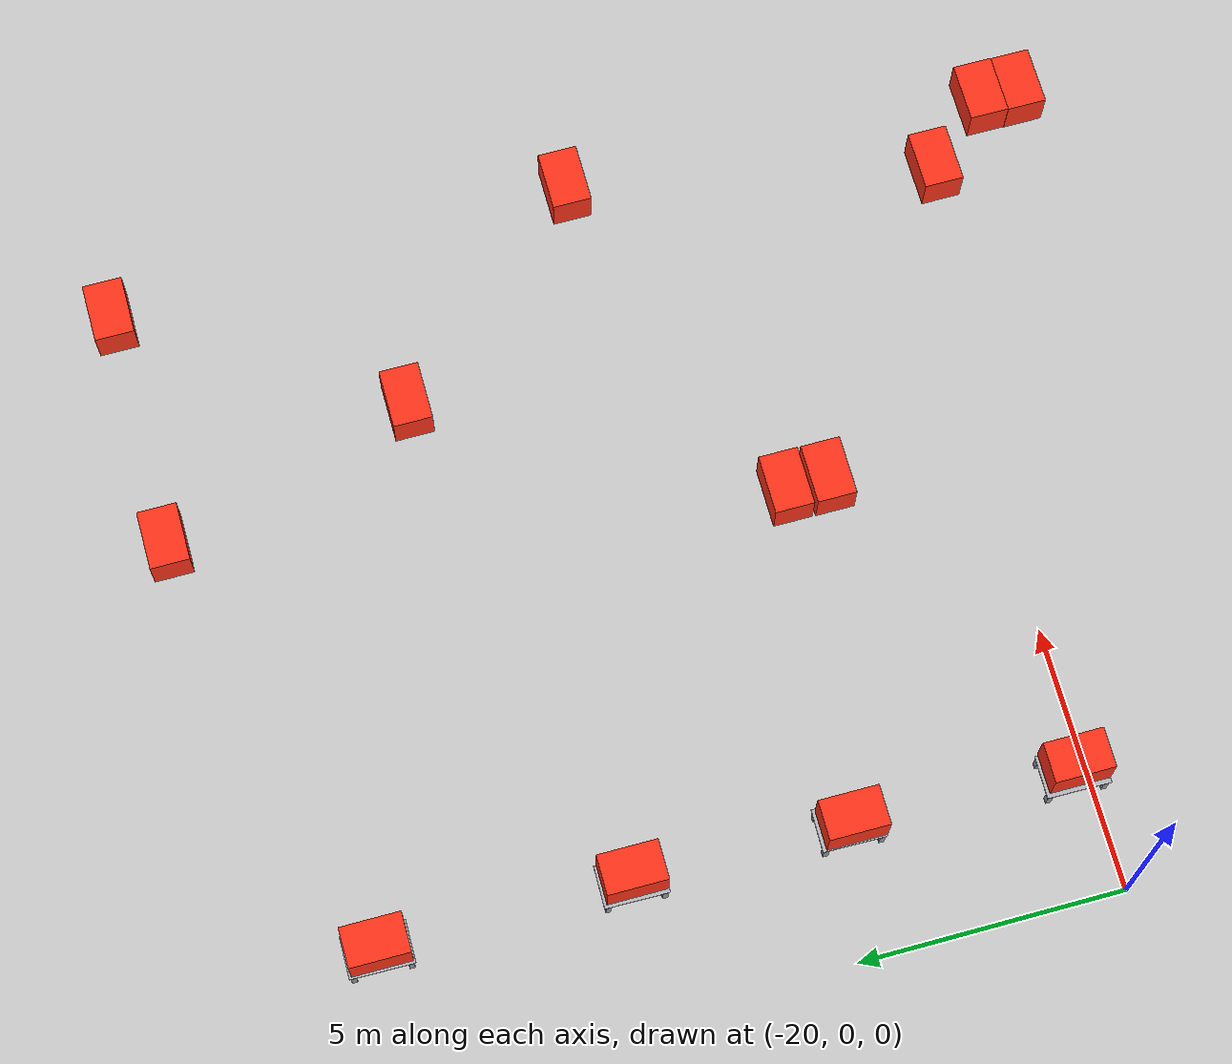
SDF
<sdf version="1.7">
 <world name="default">
  <model name="ground_plane">
   <static>1</static>
   <link name="link">
    <collision name="collision">
     <geometry><plane><normal>0 0 1</normal><size>100 100</size></plane></geometry>
     <surface>
      <contact><collide_bitmask>65535</collide_bitmask></contact>
      <friction><ode><mu>100</mu><mu2>50</mu2></ode></friction>
     </surface>
    </collision>
    <visual name="visual">
     <cast_shadows>0</cast_shadows>
     <geometry><plane><normal>0 0 1</normal><size>100 100</size></plane></geometry>
     <material>
      <script><uri>file://media/materials/scripts/gazebo.material</uri><name>Gazebo/Grey</name></script>
     </material>
    </visual>
   </link>
  </model>
  <model name="stand_1">
   <static>0</static>
   <link name="base_link">
    <collision name="top_plate_col">
     <pose>0 0 0.46 0 -0 0</pose>
     <geometry><box><size>1.2 0.8 0.02</size></box></geometry>
    </collision>
    <visual name="top_plate_vis">
     <pose>0 0 0.46 0 -0 0</pose>
     <geometry><box><size>1.2 0.8 0.02</size></box></geometry>
     <material>
      <ambient>0.72 0.72 0.75 1</ambient>
      <diffuse>0.72 0.72 0.75 1</diffuse>
      <specular>0.5 0.5 0.5 1</specular>
     </material>
    </visual>
    <collision name="leg_fl_col">
     <pose>0.52 -0.33 0.225 0 -0 0</pose>
     <geometry><box><size>0.1 0.1 0.45</size></box></geometry>
    </collision>
    <visual name="leg_fl_vis">
     <pose>0.52 -0.33 0.225 0 -0 0</pose>
     <geometry><box><size>0.1 0.1 0.45</size></box></geometry>
     <material><ambient>0.6 0.6 0.63 1</ambient><diffuse>0.6 0.6 0.63 1</diffuse></material>
    </visual>
    <collision name="leg_fr_col">
     <pose>0.52 0.33 0.225 0 -0 0</pose>
     <geometry><box><size>0.1 0.1 0.45</size></box></geometry>
    </collision>
    <visual name="leg_fr_vis">
     <pose>0.52 0.33 0.225 0 -0 0</pose>
     <geometry><box><size>0.1 0.1 0.45</size></box></geometry>
     <material><ambient>0.6 0.6 0.63 1</ambient><diffuse>0.6 0.6 0.63 1</diffuse></material>
    </visual>
    <collision name="leg_rl_col">
     <pose>-0.52 -0.33 0.225 0 -0 0</pose>
     <geometry><box><size>0.1 0.1 0.45</size></box></geometry>
    </collision>
    <visual name="leg_rl_vis">
     <pose>-0.52 -0.33 0.225 0 -0 0</pose>
     <geometry><box><size>0.1 0.1 0.45</size></box></geometry>
     <material><ambient>0.6 0.6 0.63 1</ambient><diffuse>0.6 0.6 0.63 1</diffuse></material>
    </visual>
    <collision name="leg_rr_col">
     <pose>-0.52 0.33 0.225 0 -0 0</pose>
     <geometry><box><size>0.1 0.1 0.45</size></box></geometry>
    </collision>
    <visual name="leg_rr_vis">
     <pose>-0.52 0.33 0.225 0 -0 0</pose>
     <geometry><box><size>0.1 0.1 0.45</size></box></geometry>
     <material><ambient>0.6 0.6 0.63 1</ambient><diffuse>0.6 0.6 0.63 1</diffuse></material>
    </visual>
    <inertial>
     <mass>25</mass>
     <inertia><ixx>1.4</ixx><iyy>2.1</iyy><izz>3.2</izz><ixy>0</ixy><ixz>0</ixz><iyz>0</iyz></inertia>
    </inertial>
   </link>
   <pose>-17.628 4.46342 0 -2e-06 -1e-06 -1.58732</pose>
  </model>
  <model name="stand_1_clone">
   <static>0</static>
   <link name="base_link">
    <collision name="top_plate_col">
     <pose>0 0 0.46 0 -0 0</pose>
     <geometry><box><size>1.2 0.8 0.02</size></box></geometry>
    </collision>
    <visual name="top_plate_vis">
     <pose>0 0 0.46 0 -0 0</pose>
     <geometry><box><size>1.2 0.8 0.02</size></box></geometry>
     <material>
      <ambient>0.72 0.72 0.75 1</ambient>
      <diffuse>0.72 0.72 0.75 1</diffuse>
      <specular>0.5 0.5 0.5 1</specular>
     </material>
    </visual>
    <collision name="leg_fl_col">
     <pose>0.52 -0.33 0.225 0 -0 0</pose>
     <geometry><box><size>0.1 0.1 0.45</size></box></geometry>
    </collision>
    <visual name="leg_fl_vis">
     <pose>0.52 -0.33 0.225 0 -0 0</pose>
     <geometry><box><size>0.1 0.1 0.45</size></box></geometry>
     <material><ambient>0.6 0.6 0.63 1</ambient><diffuse>0.6 0.6 0.63 1</diffuse></material>
    </visual>
    <collision name="leg_fr_col">
     <pose>0.52 0.33 0.225 0 -0 0</pose>
     <geometry><box><size>0.1 0.1 0.45</size></box></geometry>
    </collision>
    <visual name="leg_fr_vis">
     <pose>0.52 0.33 0.225 0 -0 0</pose>
     <geometry><box><size>0.1 0.1 0.45</size></box></geometry>
     <material><ambient>0.6 0.6 0.63 1</ambient><diffuse>0.6 0.6 0.63 1</diffuse></material>
    </visual>
    <collision name="leg_rl_col">
     <pose>-0.52 -0.33 0.225 0 -0 0</pose>
     <geometry><box><size>0.1 0.1 0.45</size></box></geometry>
    </collision>
    <visual name="leg_rl_vis">
     <pose>-0.52 -0.33 0.225 0 -0 0</pose>
     <geometry><box><size>0.1 0.1 0.45</size></box></geometry>
     <material><ambient>0.6 0.6 0.63 1</ambient><diffuse>0.6 0.6 0.63 1</diffuse></material>
    </visual>
    <collision name="leg_rr_col">
     <pose>-0.52 0.33 0.225 0 -0 0</pose>
     <geometry><box><size>0.1 0.1 0.45</size></box></geometry>
    </collision>
    <visual name="leg_rr_vis">
     <pose>-0.52 0.33 0.225 0 -0 0</pose>
     <geometry><box><size>0.1 0.1 0.45</size></box></geometry>
     <material><ambient>0.6 0.6 0.63 1</ambient><diffuse>0.6 0.6 0.63 1</diffuse></material>
    </visual>
    <inertial>
     <mass>25</mass>
     <inertia><ixx>1.4</ixx><iyy>2.1</iyy><izz>3.2</izz><ixy>0</ixy><ixz>0</ixz><iyz>0</iyz></inertia>
    </inertial>
   </link>
   <pose>-17.5795 8.4682 -8e-06 -2.7e-05 -0 -1.58637</pose>
  </model>
  <model name="stand_1_clone_0">
   <static>0</static>
   <link name="base_link">
    <collision name="top_plate_col">
     <pose>0 0 0.46 0 -0 0</pose>
     <geometry><box><size>1.2 0.8 0.02</size></box></geometry>
    </collision>
    <visual name="top_plate_vis">
     <pose>0 0 0.46 0 -0 0</pose>
     <geometry><box><size>1.2 0.8 0.02</size></box></geometry>
     <material>
      <ambient>0.72 0.72 0.75 1</ambient>
      <diffuse>0.72 0.72 0.75 1</diffuse>
      <specular>0.5 0.5 0.5 1</specular>
     </material>
    </visual>
    <collision name="leg_fl_col">
     <pose>0.52 -0.33 0.225 0 -0 0</pose>
     <geometry><box><size>0.1 0.1 0.45</size></box></geometry>
    </collision>
    <visual name="leg_fl_vis">
     <pose>0.52 -0.33 0.225 0 -0 0</pose>
     <geometry><box><size>0.1 0.1 0.45</size></box></geometry>
     <material><ambient>0.6 0.6 0.63 1</ambient><diffuse>0.6 0.6 0.63 1</diffuse></material>
    </visual>
    <collision name="leg_fr_col">
     <pose>0.52 0.33 0.225 0 -0 0</pose>
     <geometry><box><size>0.1 0.1 0.45</size></box></geometry>
    </collision>
    <visual name="leg_fr_vis">
     <pose>0.52 0.33 0.225 0 -0 0</pose>
     <geometry><box><size>0.1 0.1 0.45</size></box></geometry>
     <material><ambient>0.6 0.6 0.63 1</ambient><diffuse>0.6 0.6 0.63 1</diffuse></material>
    </visual>
    <collision name="leg_rl_col">
     <pose>-0.52 -0.33 0.225 0 -0 0</pose>
     <geometry><box><size>0.1 0.1 0.45</size></box></geometry>
    </collision>
    <visual name="leg_rl_vis">
     <pose>-0.52 -0.33 0.225 0 -0 0</pose>
     <geometry><box><size>0.1 0.1 0.45</size></box></geometry>
     <material><ambient>0.6 0.6 0.63 1</ambient><diffuse>0.6 0.6 0.63 1</diffuse></material>
    </visual>
    <collision name="leg_rr_col">
     <pose>-0.52 0.33 0.225 0 -0 0</pose>
     <geometry><box><size>0.1 0.1 0.45</size></box></geometry>
    </collision>
    <visual name="leg_rr_vis">
     <pose>-0.52 0.33 0.225 0 -0 0</pose>
     <geometry><box><size>0.1 0.1 0.45</size></box></geometry>
     <material><ambient>0.6 0.6 0.63 1</ambient><diffuse>0.6 0.6 0.63 1</diffuse></material>
    </visual>
    <inertial>
     <mass>25</mass>
     <inertia><ixx>1.4</ixx><iyy>2.1</iyy><izz>3.2</izz><ixy>0</ixy><ixz>0</ixz><iyz>0</iyz></inertia>
    </inertial>
   </link>
   <pose>-17.6066 13.1095 -5e-06 -2e-06 -1.1e-05 -1.58637</pose>
  </model>
  <model name="stand_1_clone_1">
   <static>0</static>
   <link name="base_link">
    <collision name="top_plate_col">
     <pose>0 0 0.46 0 -0 0</pose>
     <geometry><box><size>1.2 0.8 0.02</size></box></geometry>
    </collision>
    <visual name="top_plate_vis">
     <pose>0 0 0.46 0 -0 0</pose>
     <geometry><box><size>1.2 0.8 0.02</size></box></geometry>
     <material>
      <ambient>0.72 0.72 0.75 1</ambient>
      <diffuse>0.72 0.72 0.75 1</diffuse>
      <specular>0.5 0.5 0.5 1</specular>
     </material>
    </visual>
    <collision name="leg_fl_col">
     <pose>0.52 -0.33 0.225 0 -0 0</pose>
     <geometry><box><size>0.1 0.1 0.45</size></box></geometry>
    </collision>
    <visual name="leg_fl_vis">
     <pose>0.52 -0.33 0.225 0 -0 0</pose>
     <geometry><box><size>0.1 0.1 0.45</size></box></geometry>
     <material><ambient>0.6 0.6 0.63 1</ambient><diffuse>0.6 0.6 0.63 1</diffuse></material>
    </visual>
    <collision name="leg_fr_col">
     <pose>0.52 0.33 0.225 0 -0 0</pose>
     <geometry><box><size>0.1 0.1 0.45</size></box></geometry>
    </collision>
    <visual name="leg_fr_vis">
     <pose>0.52 0.33 0.225 0 -0 0</pose>
     <geometry><box><size>0.1 0.1 0.45</size></box></geometry>
     <material><ambient>0.6 0.6 0.63 1</ambient><diffuse>0.6 0.6 0.63 1</diffuse></material>
    </visual>
    <collision name="leg_rl_col">
     <pose>-0.52 -0.33 0.225 0 -0 0</pose>
     <geometry><box><size>0.1 0.1 0.45</size></box></geometry>
    </collision>
    <visual name="leg_rl_vis">
     <pose>-0.52 -0.33 0.225 0 -0 0</pose>
     <geometry><box><size>0.1 0.1 0.45</size></box></geometry>
     <material><ambient>0.6 0.6 0.63 1</ambient><diffuse>0.6 0.6 0.63 1</diffuse></material>
    </visual>
    <collision name="leg_rr_col">
     <pose>-0.52 0.33 0.225 0 -0 0</pose>
     <geometry><box><size>0.1 0.1 0.45</size></box></geometry>
    </collision>
    <visual name="leg_rr_vis">
     <pose>-0.52 0.33 0.225 0 -0 0</pose>
     <geometry><box><size>0.1 0.1 0.45</size></box></geometry>
     <material><ambient>0.6 0.6 0.63 1</ambient><diffuse>0.6 0.6 0.63 1</diffuse></material>
    </visual>
    <inertial>
     <mass>25</mass>
     <inertia><ixx>1.4</ixx><iyy>2.1</iyy><izz>3.2</izz><ixy>0</ixy><ixz>0</ixz><iyz>0</iyz></inertia>
    </inertial>
   </link>
   <pose>-17.7499 0.319467 -2.6e-05 -3.1e-05 1e-06 -1.58628</pose>
  </model>
  <model name="payload_box_clone_1">
   <link name="link">
    <inertial>
     <mass>15</mass>
     <inertia><ixx>2.32332</ixx><ixy>0</ixy><ixz>0</ixz><iyy>1.43272</iyy><iyz>0</iyz><izz>2.2858</izz></inertia>
    </inertial>
    <visual name="visual">
     <geometry><box><size>0.747047 1.12719 0.766877</size></box></geometry>
     <material>
      <script><name>Gazebo/Grey</name><uri>file://media/materials/scripts/gazebo.material</uri></script>
      <shader type="pixel"><normal_map>__default__</normal_map></shader>
      <ambient>1 0.2 0.1 0</ambient>
      <diffuse>0.7 0.7 0.7 1</diffuse>
      <specular>0.01 0.01 0.01 1</specular>
      <emissive>0 0 0 1</emissive>
     </material>
    </visual>
    <collision name="collision">
     <geometry><box><size>0.747047 1.12719 0.766877</size></box></geometry>
     <surface>
      <friction>
       <ode><mu>1</mu><mu2>1</mu2><fdir1>0 0 0</fdir1><slip1>0</slip1><slip2>0</slip2></ode>
       <torsional>
        <coefficient>1</coefficient>
        <patch_radius>0</patch_radius>
        <surface_radius>0</surface_radius>
        <use_patch_radius>1</use_patch_radius>
        <ode><slip>0</slip></ode>
       </torsional>
      </friction>
      <bounce><restitution_coefficient>0</restitution_coefficient><threshold>1e+06</threshold></bounce>
      <contact>
       <collide_without_contact>0</collide_without_contact>
       <collide_without_contact_bitmask>1</collide_without_contact_bitmask>
       <collide_bitmask>1</collide_bitmask>
       <ode>
        <soft_cfm>0</soft_cfm>
        <soft_erp>0.2</soft_erp>
        <kp>1e+13</kp>
        <kd>1</kd>
        <max_vel>0.01</max_vel>
        <min_depth>0</min_depth>
       </ode>
       <bullet>
        <split_impulse>1</split_impulse>
        <split_impulse_penetration_threshold>-0.01</split_impulse_penetration_threshold>
        <soft_cfm>0</soft_cfm>
        <soft_erp>0.2</soft_erp>
        <kp>1e+13</kp>
        <kd>1</kd>
       </bullet>
      </contact>
     </surface>
    </collision>
   </link>
   <static>0</static>
   <pose>-17.721 0.322757 0.997376 1e-06 -2.2e-05 -0.001675</pose>
  </model>
  <model name="payload_box_clone_2">
   <link name="link">
    <inertial>
     <mass>15</mass>
     <inertia><ixx>2.32332</ixx><ixy>0</ixy><ixz>0</ixz><iyy>1.43272</iyy><iyz>0</iyz><izz>2.2858</izz></inertia>
    </inertial>
    <visual name="visual">
     <geometry><box><size>0.747047 1.12719 0.766877</size></box></geometry>
     <material>
      <script><name>Gazebo/Grey</name><uri>file://media/materials/scripts/gazebo.material</uri></script>
      <shader type="pixel"><normal_map>__default__</normal_map></shader>
      <ambient>1 0.2 0.1 0</ambient>
      <diffuse>0.7 0.7 0.7 1</diffuse>
      <specular>0.01 0.01 0.01 1</specular>
      <emissive>0 0 0 1</emissive>
     </material>
    </visual>
    <collision name="collision">
     <geometry><box><size>0.747047 1.12719 0.766877</size></box></geometry>
     <surface>
      <friction>
       <ode><mu>1</mu><mu2>1</mu2><fdir1>0 0 0</fdir1><slip1>0</slip1><slip2>0</slip2></ode>
       <torsional>
        <coefficient>1</coefficient>
        <patch_radius>0</patch_radius>
        <surface_radius>0</surface_radius>
        <use_patch_radius>1</use_patch_radius>
        <ode><slip>0</slip></ode>
       </torsional>
      </friction>
      <bounce><restitution_coefficient>0</restitution_coefficient><threshold>1e+06</threshold></bounce>
      <contact>
       <collide_without_contact>0</collide_without_contact>
       <collide_without_contact_bitmask>1</collide_without_contact_bitmask>
       <collide_bitmask>1</collide_bitmask>
       <ode>
        <soft_cfm>0</soft_cfm>
        <soft_erp>0.2</soft_erp>
        <kp>1e+13</kp>
        <kd>1</kd>
        <max_vel>0.01</max_vel>
        <min_depth>0</min_depth>
       </ode>
       <bullet>
        <split_impulse>1</split_impulse>
        <split_impulse_penetration_threshold>-0.01</split_impulse_penetration_threshold>
        <soft_cfm>0</soft_cfm>
        <soft_erp>0.2</soft_erp>
        <kp>1e+13</kp>
        <kd>1</kd>
       </bullet>
      </contact>
     </surface>
    </collision>
   </link>
   <static>0</static>
   <pose>-17.6607 4.45201 0.997415 -8e-06 -2.8e-05 -0.004479</pose>
  </model>
  <model name="payload_box_clone_3">
   <link name="link">
    <inertial>
     <mass>15</mass>
     <inertia><ixx>2.32332</ixx><ixy>0</ixy><ixz>0</ixz><iyy>1.43272</iyy><iyz>0</iyz><izz>2.2858</izz></inertia>
    </inertial>
    <visual name="visual">
     <geometry><box><size>0.747047 1.12719 0.766877</size></box></geometry>
     <material>
      <script><name>Gazebo/Grey</name><uri>file://media/materials/scripts/gazebo.material</uri></script>
      <shader type="pixel"><normal_map>__default__</normal_map></shader>
      <ambient>1 0.2 0.1 0</ambient>
      <diffuse>0.7 0.7 0.7 1</diffuse>
      <specular>0.01 0.01 0.01 1</specular>
      <emissive>0 0 0 1</emissive>
     </material>
    </visual>
    <collision name="collision">
     <geometry><box><size>0.747047 1.12719 0.766877</size></box></geometry>
     <surface>
      <friction>
       <ode><mu>1</mu><mu2>1</mu2><fdir1>0 0 0</fdir1><slip1>0</slip1><slip2>0</slip2></ode>
       <torsional>
        <coefficient>1</coefficient>
        <patch_radius>0</patch_radius>
        <surface_radius>0</surface_radius>
        <use_patch_radius>1</use_patch_radius>
        <ode><slip>0</slip></ode>
       </torsional>
      </friction>
      <bounce><restitution_coefficient>0</restitution_coefficient><threshold>1e+06</threshold></bounce>
      <contact>
       <collide_without_contact>0</collide_without_contact>
       <collide_without_contact_bitmask>1</collide_without_contact_bitmask>
       <collide_bitmask>1</collide_bitmask>
       <ode>
        <soft_cfm>0</soft_cfm>
        <soft_erp>0.2</soft_erp>
        <kp>1e+13</kp>
        <kd>1</kd>
        <max_vel>0.01</max_vel>
        <min_depth>0</min_depth>
       </ode>
       <bullet>
        <split_impulse>1</split_impulse>
        <split_impulse_penetration_threshold>-0.01</split_impulse_penetration_threshold>
        <soft_cfm>0</soft_cfm>
        <soft_erp>0.2</soft_erp>
        <kp>1e+13</kp>
        <kd>1</kd>
       </bullet>
      </contact>
     </surface>
    </collision>
   </link>
   <static>0</static>
   <pose>-17.5692 8.46073 0.997417 3.8e-05 -6.3e-05 -0.003106</pose>
  </model>
  <model name="payload_box_clone_4">
   <link name="link">
    <inertial>
     <mass>15</mass>
     <inertia><ixx>2.32332</ixx><ixy>0</ixy><ixz>0</ixz><iyy>1.43272</iyy><iyz>0</iyz><izz>2.2858</izz></inertia>
    </inertial>
    <visual name="visual">
     <geometry><box><size>0.747047 1.12719 0.766877</size></box></geometry>
     <material>
      <script><name>Gazebo/Grey</name><uri>file://media/materials/scripts/gazebo.material</uri></script>
      <shader type="pixel"><normal_map>__default__</normal_map></shader>
      <ambient>1 0.2 0.1 0</ambient>
      <diffuse>0.7 0.7 0.7 1</diffuse>
      <specular>0.01 0.01 0.01 1</specular>
      <emissive>0 0 0 1</emissive>
     </material>
    </visual>
    <collision name="collision">
     <geometry><box><size>0.747047 1.12719 0.766877</size></box></geometry>
     <surface>
      <friction>
       <ode><mu>1</mu><mu2>1</mu2><fdir1>0 0 0</fdir1><slip1>0</slip1><slip2>0</slip2></ode>
       <torsional>
        <coefficient>1</coefficient>
        <patch_radius>0</patch_radius>
        <surface_radius>0</surface_radius>
        <use_patch_radius>1</use_patch_radius>
        <ode><slip>0</slip></ode>
       </torsional>
      </friction>
      <bounce><restitution_coefficient>0</restitution_coefficient><threshold>1e+06</threshold></bounce>
      <contact>
       <collide_without_contact>0</collide_without_contact>
       <collide_without_contact_bitmask>1</collide_without_contact_bitmask>
       <collide_bitmask>1</collide_bitmask>
       <ode>
        <soft_cfm>0</soft_cfm>
        <soft_erp>0.2</soft_erp>
        <kp>1e+13</kp>
        <kd>1</kd>
        <max_vel>0.01</max_vel>
        <min_depth>0</min_depth>
       </ode>
       <bullet>
        <split_impulse>1</split_impulse>
        <split_impulse_penetration_threshold>-0.01</split_impulse_penetration_threshold>
        <soft_cfm>0</soft_cfm>
        <soft_erp>0.2</soft_erp>
        <kp>1e+13</kp>
        <kd>1</kd>
       </bullet>
      </contact>
     </surface>
    </collision>
   </link>
   <static>0</static>
   <pose>-17.619 13.1008 0.997426 -3e-06 -3.3e-05 -0.004241</pose>
  </model>
  <model name="payload_box_clone_5_clone_8">
   <link name="link">
    <inertial>
     <mass>15</mass>
     <inertia><ixx>2.32332</ixx><ixy>0</ixy><ixz>0</ixz><iyy>1.43272</iyy><iyz>0</iyz><izz>2.2858</izz></inertia>
    </inertial>
    <visual name="visual">
     <geometry><box><size>0.747047 1.12719 0.766877</size></box></geometry>
     <material>
      <script><name>Gazebo/Grey</name><uri>file://media/materials/scripts/gazebo.material</uri></script>
      <shader type="pixel"><normal_map>__default__</normal_map></shader>
      <ambient>1 0.2 0.1 0</ambient>
      <diffuse>0.7 0.7 0.7 1</diffuse>
      <specular>0.01 0.01 0.01 1</specular>
      <emissive>0 0 0 1</emissive>
     </material>
    </visual>
    <collision name="collision">
     <geometry><box><size>0.747047 1.12719 0.766877</size></box></geometry>
     <surface>
      <friction>
       <ode><mu>1</mu><mu2>1</mu2><fdir1>0 0 0</fdir1><slip1>0</slip1><slip2>0</slip2></ode>
       <torsional>
        <coefficient>1</coefficient>
        <patch_radius>0</patch_radius>
        <surface_radius>0</surface_radius>
        <use_patch_radius>1</use_patch_radius>
        <ode><slip>0</slip></ode>
       </torsional>
      </friction>
      <bounce><restitution_coefficient>0</restitution_coefficient><threshold>1e+06</threshold></bounce>
      <contact>
       <collide_without_contact>0</collide_without_contact>
       <collide_without_contact_bitmask>1</collide_without_contact_bitmask>
       <collide_bitmask>1</collide_bitmask>
       <ode>
        <soft_cfm>0</soft_cfm>
        <soft_erp>0.2</soft_erp>
        <kp>1e+13</kp>
        <kd>1</kd>
        <max_vel>0.01</max_vel>
        <min_depth>0</min_depth>
       </ode>
       <bullet>
        <split_impulse>1</split_impulse>
        <split_impulse_penetration_threshold>-0.01</split_impulse_penetration_threshold>
        <soft_cfm>0</soft_cfm>
        <soft_erp>0.2</soft_erp>
        <kp>1e+13</kp>
        <kd>1</kd>
       </bullet>
      </contact>
     </surface>
    </collision>
   </link>
   <static>0</static>
   <pose>-4.5286 -2.14477 0.383438 0 -0 1.57055</pose>
  </model>
  <model name="payload_box_clone_5_clone_9">
   <link name="link">
    <inertial>
     <mass>15</mass>
     <inertia><ixx>2.32332</ixx><ixy>0</ixy><ixz>0</ixz><iyy>1.43272</iyy><iyz>0</iyz><izz>2.2858</izz></inertia>
    </inertial>
    <visual name="visual">
     <geometry><box><size>0.747047 1.12719 0.766877</size></box></geometry>
     <material>
      <script><name>Gazebo/Grey</name><uri>file://media/materials/scripts/gazebo.material</uri></script>
      <shader type="pixel"><normal_map>__default__</normal_map></shader>
      <ambient>1 0.2 0.1 0</ambient>
      <diffuse>0.7 0.7 0.7 1</diffuse>
      <specular>0.01 0.01 0.01 1</specular>
      <emissive>0 0 0 1</emissive>
     </material>
    </visual>
    <collision name="collision">
     <geometry><box><size>0.747047 1.12719 0.766877</size></box></geometry>
     <surface>
      <friction>
       <ode><mu>1</mu><mu2>1</mu2><fdir1>0 0 0</fdir1><slip1>0</slip1><slip2>0</slip2></ode>
       <torsional>
        <coefficient>1</coefficient>
        <patch_radius>0</patch_radius>
        <surface_radius>0</surface_radius>
        <use_patch_radius>1</use_patch_radius>
        <ode><slip>0</slip></ode>
       </torsional>
      </friction>
      <bounce><restitution_coefficient>0</restitution_coefficient><threshold>1e+06</threshold></bounce>
      <contact>
       <collide_without_contact>0</collide_without_contact>
       <collide_without_contact_bitmask>1</collide_without_contact_bitmask>
       <collide_bitmask>1</collide_bitmask>
       <ode>
        <soft_cfm>0</soft_cfm>
        <soft_erp>0.2</soft_erp>
        <kp>1e+13</kp>
        <kd>1</kd>
        <max_vel>0.01</max_vel>
        <min_depth>0</min_depth>
       </ode>
       <bullet>
        <split_impulse>1</split_impulse>
        <split_impulse_penetration_threshold>-0.01</split_impulse_penetration_threshold>
        <soft_cfm>0</soft_cfm>
        <soft_erp>0.2</soft_erp>
        <kp>1e+13</kp>
        <kd>1</kd>
       </bullet>
      </contact>
     </surface>
    </collision>
   </link>
   <static>0</static>
   <pose>-4.53812 -2.89186 0.383438 0 -0 1.57051</pose>
  </model>
  <model name="payload_box_clone_5_clone_12">
   <link name="link">
    <inertial>
     <mass>15</mass>
     <inertia><ixx>2.32332</ixx><ixy>0</ixy><ixz>0</ixz><iyy>1.43272</iyy><iyz>0</iyz><izz>2.2858</izz></inertia>
    </inertial>
    <visual name="visual">
     <geometry><box><size>0.747047 1.12719 0.766877</size></box></geometry>
     <material>
      <script><name>Gazebo/Grey</name><uri>file://media/materials/scripts/gazebo.material</uri></script>
      <shader type="pixel"><normal_map>__default__</normal_map></shader>
      <ambient>1 0.2 0.1 0</ambient>
      <diffuse>0.7 0.7 0.7 1</diffuse>
      <specular>0.01 0.01 0.01 1</specular>
      <emissive>0 0 0 1</emissive>
     </material>
    </visual>
    <collision name="collision">
     <geometry><box><size>0.747047 1.12719 0.766877</size></box></geometry>
     <surface>
      <friction>
       <ode><mu>1</mu><mu2>1</mu2><fdir1>0 0 0</fdir1><slip1>0</slip1><slip2>0</slip2></ode>
       <torsional>
        <coefficient>1</coefficient>
        <patch_radius>0</patch_radius>
        <surface_radius>0</surface_radius>
        <use_patch_radius>1</use_patch_radius>
        <ode><slip>0</slip></ode>
       </torsional>
      </friction>
      <bounce><restitution_coefficient>0</restitution_coefficient><threshold>1e+06</threshold></bounce>
      <contact>
       <collide_without_contact>0</collide_without_contact>
       <collide_without_contact_bitmask>1</collide_without_contact_bitmask>
       <collide_bitmask>1</collide_bitmask>
       <ode>
        <soft_cfm>0</soft_cfm>
        <soft_erp>0.2</soft_erp>
        <kp>1e+13</kp>
        <kd>1</kd>
        <max_vel>0.01</max_vel>
        <min_depth>0</min_depth>
       </ode>
       <bullet>
        <split_impulse>1</split_impulse>
        <split_impulse_penetration_threshold>-0.01</split_impulse_penetration_threshold>
        <soft_cfm>0</soft_cfm>
        <soft_erp>0.2</soft_erp>
        <kp>1e+13</kp>
        <kd>1</kd>
       </bullet>
      </contact>
     </surface>
    </collision>
   </link>
   <static>0</static>
   <pose>-5.67721 -0.873075 0.383438 0 -0 1.5709</pose>
  </model>
  <model name="payload_box_clone_5_clone_14">
   <link name="link">
    <inertial>
     <mass>15</mass>
     <inertia><ixx>2.32332</ixx><ixy>0</ixy><ixz>0</ixz><iyy>1.43272</iyy><iyz>0</iyz><izz>2.2858</izz></inertia>
    </inertial>
    <visual name="visual">
     <geometry><box><size>0.747047 1.12719 0.766877</size></box></geometry>
     <material>
      <script><name>Gazebo/Grey</name><uri>file://media/materials/scripts/gazebo.material</uri></script>
      <shader type="pixel"><normal_map>__default__</normal_map></shader>
      <ambient>1 0.2 0.1 0</ambient>
      <diffuse>0.7 0.7 0.7 1</diffuse>
      <specular>0.01 0.01 0.01 1</specular>
      <emissive>0 0 0 1</emissive>
     </material>
    </visual>
    <collision name="collision">
     <geometry><box><size>0.747047 1.12719 0.766877</size></box></geometry>
     <surface>
      <friction>
       <ode><mu>1</mu><mu2>1</mu2><fdir1>0 0 0</fdir1><slip1>0</slip1><slip2>0</slip2></ode>
       <torsional>
        <coefficient>1</coefficient>
        <patch_radius>0</patch_radius>
        <surface_radius>0</surface_radius>
        <use_patch_radius>1</use_patch_radius>
        <ode><slip>0</slip></ode>
       </torsional>
      </friction>
      <bounce><restitution_coefficient>0</restitution_coefficient><threshold>1e+06</threshold></bounce>
      <contact>
       <collide_without_contact>0</collide_without_contact>
       <collide_without_contact_bitmask>1</collide_without_contact_bitmask>
       <collide_bitmask>1</collide_bitmask>
       <ode>
        <soft_cfm>0</soft_cfm>
        <soft_erp>0.2</soft_erp>
        <kp>1e+13</kp>
        <kd>1</kd>
        <max_vel>0.01</max_vel>
        <min_depth>0</min_depth>
       </ode>
       <bullet>
        <split_impulse>1</split_impulse>
        <split_impulse_penetration_threshold>-0.01</split_impulse_penetration_threshold>
        <soft_cfm>0</soft_cfm>
        <soft_erp>0.2</soft_erp>
        <kp>1e+13</kp>
        <kd>1</kd>
       </bullet>
      </contact>
     </surface>
    </collision>
   </link>
   <static>0</static>
   <pose>-11.2186 2.92965 0.383438 0 -0 1.5709</pose>
  </model>
  <model name="payload_box_clone_5_clone_15">
   <link name="link">
    <inertial>
     <mass>15</mass>
     <inertia><ixx>2.32332</ixx><ixy>0</ixy><ixz>0</ixz><iyy>1.43272</iyy><iyz>0</iyz><izz>2.2858</izz></inertia>
    </inertial>
    <visual name="visual">
     <geometry><box><size>0.747047 1.12719 0.766877</size></box></geometry>
     <material>
      <script><name>Gazebo/Grey</name><uri>file://media/materials/scripts/gazebo.material</uri></script>
      <shader type="pixel"><normal_map>__default__</normal_map></shader>
      <ambient>1 0.2 0.1 0</ambient>
      <diffuse>0.7 0.7 0.7 1</diffuse>
      <specular>0.01 0.01 0.01 1</specular>
      <emissive>0 0 0 1</emissive>
     </material>
    </visual>
    <collision name="collision">
     <geometry><box><size>0.747047 1.12719 0.766877</size></box></geometry>
     <surface>
      <friction>
       <ode><mu>1</mu><mu2>1</mu2><fdir1>0 0 0</fdir1><slip1>0</slip1><slip2>0</slip2></ode>
       <torsional>
        <coefficient>1</coefficient>
        <patch_radius>0</patch_radius>
        <surface_radius>0</surface_radius>
        <use_patch_radius>1</use_patch_radius>
        <ode><slip>0</slip></ode>
       </torsional>
      </friction>
      <bounce><restitution_coefficient>0</restitution_coefficient><threshold>1e+06</threshold></bounce>
      <contact>
       <collide_without_contact>0</collide_without_contact>
       <collide_without_contact_bitmask>1</collide_without_contact_bitmask>
       <collide_bitmask>1</collide_bitmask>
       <ode>
        <soft_cfm>0</soft_cfm>
        <soft_erp>0.2</soft_erp>
        <kp>1e+13</kp>
        <kd>1</kd>
        <max_vel>0.01</max_vel>
        <min_depth>0</min_depth>
       </ode>
       <bullet>
        <split_impulse>1</split_impulse>
        <split_impulse_penetration_threshold>-0.01</split_impulse_penetration_threshold>
        <soft_cfm>0</soft_cfm>
        <soft_erp>0.2</soft_erp>
        <kp>1e+13</kp>
        <kd>1</kd>
       </bullet>
      </contact>
     </surface>
    </collision>
   </link>
   <static>0</static>
   <pose>-11.2119 3.73821 0.383438 0 -0 1.5709</pose>
  </model>
  <model name="payload_box_clone_5_clone_17">
   <link name="link">
    <inertial>
     <mass>15</mass>
     <inertia><ixx>2.32332</ixx><ixy>0</ixy><ixz>0</ixz><iyy>1.43272</iyy><iyz>0</iyz><izz>2.2858</izz></inertia>
    </inertial>
    <visual name="visual">
     <geometry><box><size>0.747047 1.12719 0.766877</size></box></geometry>
     <material>
      <script><name>Gazebo/Grey</name><uri>file://media/materials/scripts/gazebo.material</uri></script>
      <shader type="pixel"><normal_map>__default__</normal_map></shader>
      <ambient>1 0.2 0.1 0</ambient>
      <diffuse>0.7 0.7 0.7 1</diffuse>
      <specular>0.01 0.01 0.01 1</specular>
      <emissive>0 0 0 1</emissive>
     </material>
    </visual>
    <collision name="collision">
     <geometry><box><size>0.747047 1.12719 0.766877</size></box></geometry>
     <surface>
      <friction>
       <ode><mu>1</mu><mu2>1</mu2><fdir1>0 0 0</fdir1><slip1>0</slip1><slip2>0</slip2></ode>
       <torsional>
        <coefficient>1</coefficient>
        <patch_radius>0</patch_radius>
        <surface_radius>0</surface_radius>
        <use_patch_radius>1</use_patch_radius>
        <ode><slip>0</slip></ode>
       </torsional>
      </friction>
      <bounce><restitution_coefficient>0</restitution_coefficient><threshold>1e+06</threshold></bounce>
      <contact>
       <collide_without_contact>0</collide_without_contact>
       <collide_without_contact_bitmask>1</collide_without_contact_bitmask>
       <collide_bitmask>1</collide_bitmask>
       <ode>
        <soft_cfm>0</soft_cfm>
        <soft_erp>0.2</soft_erp>
        <kp>1e+13</kp>
        <kd>1</kd>
        <max_vel>0.01</max_vel>
        <min_depth>0</min_depth>
       </ode>
       <bullet>
        <split_impulse>1</split_impulse>
        <split_impulse_penetration_threshold>-0.01</split_impulse_penetration_threshold>
        <soft_cfm>0</soft_cfm>
        <soft_erp>0.2</soft_erp>
        <kp>1e+13</kp>
        <kd>1</kd>
       </bullet>
      </contact>
     </surface>
    </collision>
   </link>
   <static>0</static>
   <pose>-4.21639 6.06329 0.383438 0 -0 1.5709</pose>
  </model>
  <model name="payload_box_clone_5_clone_21">
   <link name="link">
    <inertial>
     <mass>15</mass>
     <inertia><ixx>2.32332</ixx><ixy>0</ixy><ixz>0</ixz><iyy>1.43272</iyy><iyz>0</iyz><izz>2.2858</izz></inertia>
    </inertial>
    <visual name="visual">
     <geometry><box><size>0.747047 1.12719 0.766877</size></box></geometry>
     <material>
      <script><name>Gazebo/Grey</name><uri>file://media/materials/scripts/gazebo.material</uri></script>
      <shader type="pixel"><normal_map>__default__</normal_map></shader>
      <ambient>1 0.2 0.1 0</ambient>
      <diffuse>0.7 0.7 0.7 1</diffuse>
      <specular>0.01 0.01 0.01 1</specular>
      <emissive>0 0 0 1</emissive>
     </material>
    </visual>
    <collision name="collision">
     <geometry><box><size>0.747047 1.12719 0.766877</size></box></geometry>
     <surface>
      <friction>
       <ode><mu>1</mu><mu2>1</mu2><fdir1>0 0 0</fdir1><slip1>0</slip1><slip2>0</slip2></ode>
       <torsional>
        <coefficient>1</coefficient>
        <patch_radius>0</patch_radius>
        <surface_radius>0</surface_radius>
        <use_patch_radius>1</use_patch_radius>
        <ode><slip>0</slip></ode>
       </torsional>
      </friction>
      <bounce><restitution_coefficient>0</restitution_coefficient><threshold>1e+06</threshold></bounce>
      <contact>
       <collide_without_contact>0</collide_without_contact>
       <collide_without_contact_bitmask>1</collide_without_contact_bitmask>
       <collide_bitmask>1</collide_bitmask>
       <ode>
        <soft_cfm>0</soft_cfm>
        <soft_erp>0.2</soft_erp>
        <kp>1e+13</kp>
        <kd>1</kd>
        <max_vel>0.01</max_vel>
        <min_depth>0</min_depth>
       </ode>
       <bullet>
        <split_impulse>1</split_impulse>
        <split_impulse_penetration_threshold>-0.01</split_impulse_penetration_threshold>
        <soft_cfm>0</soft_cfm>
        <soft_erp>0.2</soft_erp>
        <kp>1e+13</kp>
        <kd>1</kd>
       </bullet>
      </contact>
     </surface>
    </collision>
   </link>
   <static>0</static>
   <pose>-7.72138 10.0718 0.383438 0 -0 1.5709</pose>
  </model>
  <model name="payload_box_clone_5_clone_28">
   <link name="link">
    <inertial>
     <mass>15</mass>
     <inertia><ixx>2.32332</ixx><ixy>0</ixy><ixz>0</ixz><iyy>1.43272</iyy><iyz>0</iyz><izz>2.2858</izz></inertia>
    </inertial>
    <visual name="visual">
     <geometry><box><size>0.747047 1.12719 0.766877</size></box></geometry>
     <material>
      <script><name>Gazebo/Grey</name><uri>file://media/materials/scripts/gazebo.material</uri></script>
      <shader type="pixel"><normal_map>__default__</normal_map></shader>
      <ambient>1 0.2 0.1 0</ambient>
      <diffuse>0.7 0.7 0.7 1</diffuse>
      <specular>0.01 0.01 0.01 1</specular>
      <emissive>0 0 0 1</emissive>
     </material>
    </visual>
    <collision name="collision">
     <geometry><box><size>0.747047 1.12719 0.766877</size></box></geometry>
     <surface>
      <friction>
       <ode><mu>1</mu><mu2>1</mu2><fdir1>0 0 0</fdir1><slip1>0</slip1><slip2>0</slip2></ode>
       <torsional>
        <coefficient>1</coefficient>
        <patch_radius>0</patch_radius>
        <surface_radius>0</surface_radius>
        <use_patch_radius>1</use_patch_radius>
        <ode><slip>0</slip></ode>
       </torsional>
      </friction>
      <bounce><restitution_coefficient>0</restitution_coefficient><threshold>1e+06</threshold></bounce>
      <contact>
       <collide_without_contact>0</collide_without_contact>
       <collide_without_contact_bitmask>1</collide_without_contact_bitmask>
       <collide_bitmask>1</collide_bitmask>
       <ode>
        <soft_cfm>0</soft_cfm>
        <soft_erp>0.2</soft_erp>
        <kp>1e+13</kp>
        <kd>1</kd>
        <max_vel>0.01</max_vel>
        <min_depth>0</min_depth>
       </ode>
       <bullet>
        <split_impulse>1</split_impulse>
        <split_impulse_penetration_threshold>-0.01</split_impulse_penetration_threshold>
        <soft_cfm>0</soft_cfm>
        <soft_erp>0.2</soft_erp>
        <kp>1e+13</kp>
        <kd>1</kd>
       </bullet>
      </contact>
     </surface>
    </collision>
   </link>
   <static>0</static>
   <pose>-9.23292 15.0247 0.383438 0 -0 1.5709</pose>
  </model>
  <model name="payload_box_clone_5_clone_29">
   <link name="link">
    <inertial>
     <mass>15</mass>
     <inertia><ixx>2.32332</ixx><ixy>0</ixy><ixz>0</ixz><iyy>1.43272</iyy><iyz>0</iyz><izz>2.2858</izz></inertia>
    </inertial>
    <visual name="visual">
     <geometry><box><size>0.747047 1.12719 0.766877</size></box></geometry>
     <material>
      <script><name>Gazebo/Grey</name><uri>file://media/materials/scripts/gazebo.material</uri></script>
      <shader type="pixel"><normal_map>__default__</normal_map></shader>
      <ambient>1 0.2 0.1 0</ambient>
      <diffuse>0.7 0.7 0.7 1</diffuse>
      <specular>0.01 0.01 0.01 1</specular>
      <emissive>0 0 0 1</emissive>
     </material>
    </visual>
    <collision name="collision">
     <geometry><box><size>0.747047 1.12719 0.766877</size></box></geometry>
     <surface>
      <friction>
       <ode><mu>1</mu><mu2>1</mu2><fdir1>0 0 0</fdir1><slip1>0</slip1><slip2>0</slip2></ode>
       <torsional>
        <coefficient>1</coefficient>
        <patch_radius>0</patch_radius>
        <surface_radius>0</surface_radius>
        <use_patch_radius>1</use_patch_radius>
        <ode><slip>0</slip></ode>
       </torsional>
      </friction>
      <bounce><restitution_coefficient>0</restitution_coefficient><threshold>1e+06</threshold></bounce>
      <contact>
       <collide_without_contact>0</collide_without_contact>
       <collide_without_contact_bitmask>1</collide_without_contact_bitmask>
       <collide_bitmask>1</collide_bitmask>
       <ode>
        <soft_cfm>0</soft_cfm>
        <soft_erp>0.2</soft_erp>
        <kp>1e+13</kp>
        <kd>1</kd>
        <max_vel>0.01</max_vel>
        <min_depth>0</min_depth>
       </ode>
       <bullet>
        <split_impulse>1</split_impulse>
        <split_impulse_penetration_threshold>-0.01</split_impulse_penetration_threshold>
        <soft_cfm>0</soft_cfm>
        <soft_erp>0.2</soft_erp>
        <kp>1e+13</kp>
        <kd>1</kd>
       </bullet>
      </contact>
     </surface>
    </collision>
   </link>
   <static>0</static>
   <pose>-4.57712 15.0248 0.383438 0 -0 1.5709</pose>
  </model>
 </world>
</sdf>
